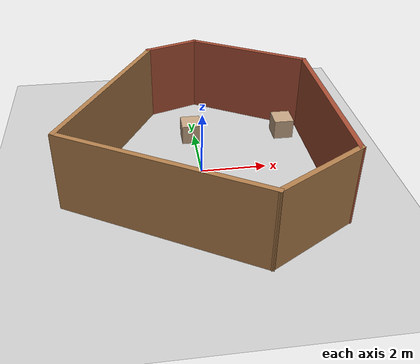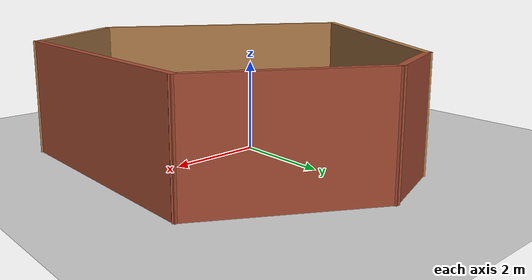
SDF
<sdf version="1.7">
 <world name="default">
  <model name="ground_plane">
   <static>1</static>
   <link name="link">
    <collision name="collision">
     <geometry><plane><normal>0 0 1</normal><size>100 100</size></plane></geometry>
     <surface>
      <contact><collide_bitmask>65535</collide_bitmask></contact>
      <friction><ode><mu>100</mu><mu2>50</mu2></ode></friction>
     </surface>
    </collision>
    <visual name="visual">
     <cast_shadows>0</cast_shadows>
     <geometry><plane><normal>0 0 1</normal><size>100 100</size></plane></geometry>
     <material>
      <script><uri>file://media/materials/scripts/gazebo.material</uri><name>Gazebo/Grey</name></script>
     </material>
    </visual>
   </link>
  </model>
  <light name="sun" type="directional">
   <pose>0 0 10 0 -0 0</pose>
   <diffuse>0.8 0.8 0.8 1</diffuse>
   <specular>0.2 0.2 0.2 1</specular>
   <attenuation>
    <range>1000</range>
    <constant>0.9</constant>
    <linear>0.01</linear>
    <quadratic>0.001</quadratic>
   </attenuation>
   <direction>-0.5 0.1 -0.9</direction>
   <spot><inner_angle>0</inner_angle><outer_angle>0</outer_angle><falloff>0</falloff></spot>
  </light>
  <scene><shadows>0</shadows><ambient>0.4 0.4 0.4 1</ambient><background>0.7 0.7 0.7 1</background></scene>
  <physics type="ode">
   <real_time_update_rate>1000</real_time_update_rate>
   <max_step_size>0.001</max_step_size>
   <real_time_factor>1</real_time_factor>
   <ode>
    <solver>
     <type>quick</type>
     <iters>150</iters>
     <precon_iters>0</precon_iters>
     <sor>1.4</sor>
     <use_dynamic_moi_rescaling>1</use_dynamic_moi_rescaling>
    </solver>
    <constraints>
     <cfm>1e-05</cfm>
     <erp>0.2</erp>
     <contact_max_correcting_vel>2000</contact_max_correcting_vel>
     <contact_surface_layer>0.01</contact_surface_layer>
    </constraints>
   </ode>
  </physics>
  <gravity>0 0 -9.8</gravity>
  <magnetic_field>6e-06 2.3e-05 -4.2e-05</magnetic_field>
  <atmosphere type="adiabatic"/>
  <audio><device>default</device></audio>
  <spherical_coordinates>
   <surface_model>EARTH_WGS84</surface_model>
   <latitude_deg>0</latitude_deg>
   <longitude_deg>0</longitude_deg>
   <elevation>0</elevation>
   <heading_deg>0</heading_deg>
  </spherical_coordinates>
  <model name="turtlebot_room">
   <pose>-0.24318 -0.03936 0 0 -0 0</pose>
   <link name="Wall_10">
    <collision name="Wall_10_Collision">
     <geometry><box><size>5.75 0.15 2.5</size></box></geometry>
     <pose>0 0 1.25 0 -0 0</pose>
    </collision>
    <visual name="Wall_10_Visual">
     <pose>0 0 1.25 0 -0 0</pose>
     <geometry><box><size>5.75 0.15 2.5</size></box></geometry>
     <material>
      <script><uri>file://media/materials/scripts/gazebo.material</uri><name>Gazebo/Wood</name></script>
      <ambient>1 1 1 1</ambient>
     </material>
     <meta><layer>0</layer></meta>
    </visual>
    <pose>-2.47546 1.24987 0 0 -0 -2.0944</pose>
   </link>
   <link name="Wall_11">
    <collision name="Wall_11_Collision">
     <geometry><box><size>6.25 0.15 2.5</size></box></geometry>
     <pose>0 0 1.25 0 -0 0</pose>
    </collision>
    <visual name="Wall_11_Visual">
     <pose>0 0 1.25 0 -0 0</pose>
     <geometry><box><size>6.25 0.15 2.5</size></box></geometry>
     <material>
      <script><uri>file://media/materials/scripts/gazebo.material</uri><name>Gazebo/Wood</name></script>
      <ambient>1 1 1 1</ambient>
     </material>
     <meta><layer>0</layer></meta>
    </visual>
    <pose>-1.23409 -2.7 0 0 -0 -0.523599</pose>
   </link>
   <link name="Wall_12">
    <collision name="Wall_12_Collision">
     <geometry><box><size>3 0.15 2.5</size></box></geometry>
     <pose>0 0 1.25 0 -0 0</pose>
    </collision>
    <visual name="Wall_12_Visual">
     <pose>0 0 1.25 0 -0 0</pose>
     <geometry><box><size>3 0.15 2.5</size></box></geometry>
     <material>
      <script><uri>file://media/materials/scripts/gazebo.material</uri><name>Gazebo/Wood</name></script>
      <ambient>1 1 1 1</ambient>
     </material>
     <meta><layer>0</layer></meta>
    </visual>
    <pose>2.64138 -3.5125 0 0 -0 0.523599</pose>
   </link>
   <link name="Wall_13">
    <collision name="Wall_13_Collision">
     <geometry><box><size>5.25 0.15 2.5</size></box></geometry>
     <pose>0 0 1.25 0 -0 0</pose>
    </collision>
    <visual name="Wall_13_Visual">
     <pose>0 0 1.25 0 -0 0</pose>
     <geometry><box><size>5.25 0.15 2.5</size></box></geometry>
     <material>
      <script><uri>file://media/materials/scripts/gazebo.material</uri><name>Gazebo/Bricks</name></script>
      <ambient>1 1 1 1</ambient>
     </material>
     <meta><layer>0</layer></meta>
    </visual>
    <pose>3.87546 -0.25 0 0 -0 1.5708</pose>
   </link>
   <link name="Wall_14">
    <collision name="Wall_14_Collision">
     <geometry><box><size>4 0.15 2.5</size></box></geometry>
     <pose>0 0 1.25 0 -0 0</pose>
    </collision>
    <visual name="Wall_14_Visual">
     <pose>0 0 1.25 0 -0 0</pose>
     <geometry><box><size>4 0.15 2.5</size></box></geometry>
     <material>
      <script><uri>file://media/materials/scripts/gazebo.material</uri><name>Gazebo/Bricks</name></script>
      <ambient>1 1 1 1</ambient>
     </material>
     <meta><layer>0</layer></meta>
    </visual>
    <pose>2.20836 3.2625 0 0 -0 2.61799</pose>
   </link>
   <link name="Wall_15">
    <collision name="Wall_15_Collision">
     <geometry><box><size>1.8578 0.15 2.5</size></box></geometry>
     <pose>0 0 1.25 0 -0 0</pose>
    </collision>
    <visual name="Wall_15_Visual">
     <pose>0 0 1.25 0 -0 0</pose>
     <geometry><box><size>1.8578 0.15 2.5</size></box></geometry>
     <material>
      <script><uri>file://media/materials/scripts/gazebo.material</uri><name>Gazebo/Bricks</name></script>
      <ambient>1 1 1 1</ambient>
     </material>
     <meta><layer>0</layer></meta>
    </visual>
    <pose>-0.267099 3.94987 0 0 -0 -2.81354</pose>
   </link>
   <static>1</static>
  </model>
  <model name="package_box">
   <link name="link">
    <inertial>
     <mass>1</mass>
     <inertia>
      <ixx>0.166667</ixx>
      <ixy>0</ixy>
      <ixz>0</ixz>
      <iyy>0.166667</iyy>
      <iyz>0</iyz>
      <izz>0.166667</izz>
     </inertia>
    </inertial>
    <visual name="visual">
     <geometry><box><size>0.631052 0.660679 0.64389</size></box></geometry>
     <material>
      <script><name>Gazebo/Grey</name><uri>file://media/materials/scripts/gazebo.material</uri></script>
      <shader type="pixel"><normal_map>__default__</normal_map></shader>
      <ambient>0.765 0.64 0.515 0</ambient>
      <diffuse>0.7 0.7 0.7 1</diffuse>
      <specular>0.01 0.01 0.01 1</specular>
      <emissive>0 0 0 1</emissive>
     </material>
    </visual>
    <collision name="collision">
     <geometry><box><size>0.631052 0.660679 0.64389</size></box></geometry>
     <surface>
      <friction>
       <ode><mu>1</mu><mu2>1</mu2><fdir1>0 0 0</fdir1><slip1>0</slip1><slip2>0</slip2></ode>
       <torsional>
        <coefficient>1</coefficient>
        <patch_radius>0</patch_radius>
        <surface_radius>0</surface_radius>
        <use_patch_radius>1</use_patch_radius>
        <ode><slip>0</slip></ode>
       </torsional>
      </friction>
      <bounce><restitution_coefficient>0</restitution_coefficient><threshold>1e+06</threshold></bounce>
      <contact>
       <collide_without_contact>0</collide_without_contact>
       <collide_without_contact_bitmask>1</collide_without_contact_bitmask>
       <collide_bitmask>1</collide_bitmask>
       <ode>
        <soft_cfm>0</soft_cfm>
        <soft_erp>0.2</soft_erp>
        <kp>1e+13</kp>
        <kd>1</kd>
        <max_vel>0.01</max_vel>
        <min_depth>0</min_depth>
       </ode>
       <bullet>
        <split_impulse>1</split_impulse>
        <split_impulse_penetration_threshold>-0.01</split_impulse_penetration_threshold>
        <soft_cfm>0</soft_cfm>
        <soft_erp>0.2</soft_erp>
        <kp>1e+13</kp>
        <kd>1</kd>
       </bullet>
      </contact>
     </surface>
    </collision>
   </link>
   <static>0</static>
   <pose>-0.117754 1.88703 0.321945 0 -0 0</pose>
  </model>
  <model name="package_box_0">
   <link name="link">
    <inertial>
     <mass>1</mass>
     <inertia>
      <ixx>0.166667</ixx>
      <ixy>0</ixy>
      <ixz>0</ixz>
      <iyy>0.166667</iyy>
      <iyz>0</iyz>
      <izz>0.166667</izz>
     </inertia>
    </inertial>
    <visual name="visual">
     <geometry><box><size>0.631052 0.660679 0.64389</size></box></geometry>
     <material>
      <script><name>Gazebo/Grey</name><uri>file://media/materials/scripts/gazebo.material</uri></script>
      <shader type="pixel"><normal_map>__default__</normal_map></shader>
      <ambient>0.765 0.64 0.515 0</ambient>
      <diffuse>0.7 0.7 0.7 1</diffuse>
      <specular>0.01 0.01 0.01 1</specular>
      <emissive>0 0 0 1</emissive>
     </material>
    </visual>
    <collision name="collision">
     <geometry><box><size>0.631052 0.660679 0.64389</size></box></geometry>
     <surface>
      <friction>
       <ode><mu>1</mu><mu2>1</mu2><fdir1>0 0 0</fdir1><slip1>0</slip1><slip2>0</slip2></ode>
       <torsional>
        <coefficient>1</coefficient>
        <patch_radius>0</patch_radius>
        <surface_radius>0</surface_radius>
        <use_patch_radius>1</use_patch_radius>
        <ode><slip>0</slip></ode>
       </torsional>
      </friction>
      <bounce><restitution_coefficient>0</restitution_coefficient><threshold>1e+06</threshold></bounce>
      <contact>
       <collide_without_contact>0</collide_without_contact>
       <collide_without_contact_bitmask>1</collide_without_contact_bitmask>
       <collide_bitmask>1</collide_bitmask>
       <ode>
        <soft_cfm>0</soft_cfm>
        <soft_erp>0.2</soft_erp>
        <kp>1e+13</kp>
        <kd>1</kd>
        <max_vel>0.01</max_vel>
        <min_depth>0</min_depth>
       </ode>
       <bullet>
        <split_impulse>1</split_impulse>
        <split_impulse_penetration_threshold>-0.01</split_impulse_penetration_threshold>
        <soft_cfm>0</soft_cfm>
        <soft_erp>0.2</soft_erp>
        <kp>1e+13</kp>
        <kd>1</kd>
       </bullet>
      </contact>
     </surface>
    </collision>
   </link>
   <static>0</static>
   <pose>0.787685 -2.18975 0.321945 0 -0 0</pose>
  </model>
  <model name="package_box_1">
   <link name="link">
    <inertial>
     <mass>1</mass>
     <inertia>
      <ixx>0.166667</ixx>
      <ixy>0</ixy>
      <ixz>0</ixz>
      <iyy>0.166667</iyy>
      <iyz>0</iyz>
      <izz>0.166667</izz>
     </inertia>
    </inertial>
    <visual name="visual">
     <geometry><box><size>0.631052 0.660679 0.64389</size></box></geometry>
     <material>
      <script><name>Gazebo/Grey</name><uri>file://media/materials/scripts/gazebo.material</uri></script>
      <shader type="pixel"><normal_map>__default__</normal_map></shader>
      <ambient>0.765 0.64 0.515 0</ambient>
      <diffuse>0.7 0.7 0.7 1</diffuse>
      <specular>0.01 0.01 0.01 1</specular>
      <emissive>0 0 0 1</emissive>
     </material>
    </visual>
    <collision name="collision">
     <geometry><box><size>0.631052 0.660679 0.64389</size></box></geometry>
     <surface>
      <friction>
       <ode><mu>1</mu><mu2>1</mu2><fdir1>0 0 0</fdir1><slip1>0</slip1><slip2>0</slip2></ode>
       <torsional>
        <coefficient>1</coefficient>
        <patch_radius>0</patch_radius>
        <surface_radius>0</surface_radius>
        <use_patch_radius>1</use_patch_radius>
        <ode><slip>0</slip></ode>
       </torsional>
      </friction>
      <bounce><restitution_coefficient>0</restitution_coefficient><threshold>1e+06</threshold></bounce>
      <contact>
       <collide_without_contact>0</collide_without_contact>
       <collide_without_contact_bitmask>1</collide_without_contact_bitmask>
       <collide_bitmask>1</collide_bitmask>
       <ode>
        <soft_cfm>0</soft_cfm>
        <soft_erp>0.2</soft_erp>
        <kp>1e+13</kp>
        <kd>1</kd>
        <max_vel>0.01</max_vel>
        <min_depth>0</min_depth>
       </ode>
       <bullet>
        <split_impulse>1</split_impulse>
        <split_impulse_penetration_threshold>-0.01</split_impulse_penetration_threshold>
        <soft_cfm>0</soft_cfm>
        <soft_erp>0.2</soft_erp>
        <kp>1e+13</kp>
        <kd>1</kd>
       </bullet>
      </contact>
     </surface>
    </collision>
   </link>
   <static>0</static>
   <pose>2.95516 1.81212 0.321945 0 -0 0</pose>
  </model>
 </world>
</sdf>
